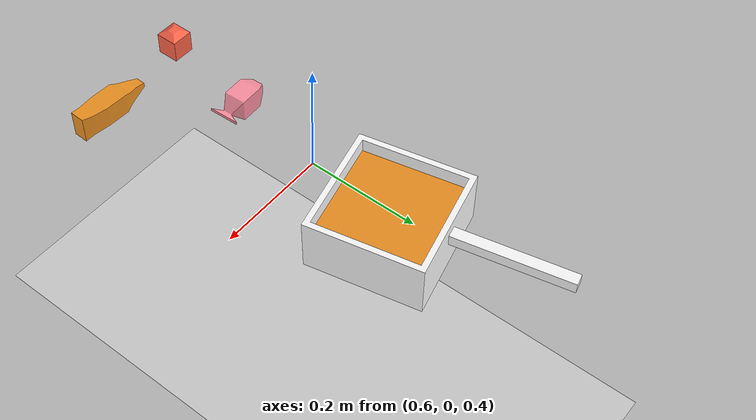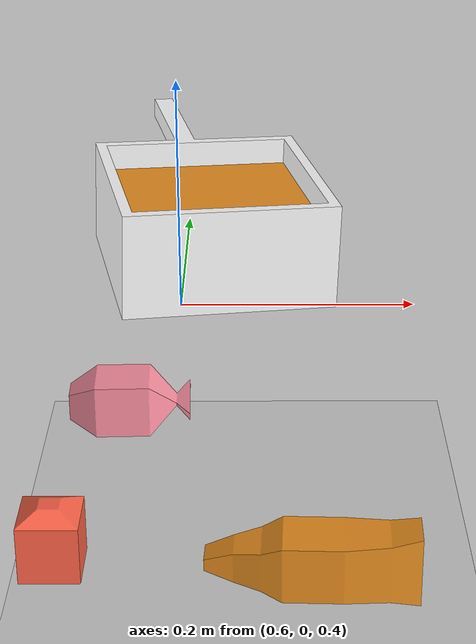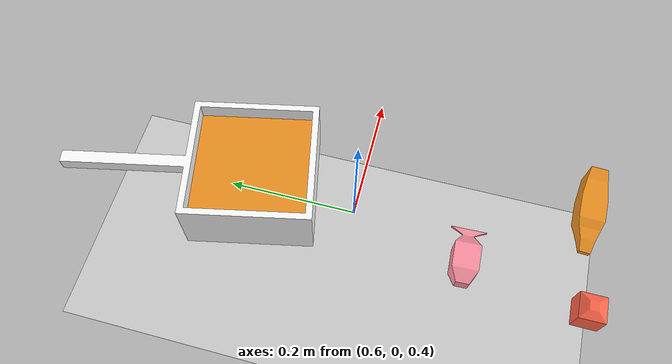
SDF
<sdf version="1.7">
 <world name="default">
  <model name="ground_plane">
   <static>1</static>
   <link name="link">
    <collision name="collision">
     <geometry><plane><normal>0 0 1</normal><size>100 100</size></plane></geometry>
     <surface>
      <contact><collide_bitmask>65535</collide_bitmask></contact>
      <friction><ode><mu>100</mu><mu2>50</mu2></ode></friction>
     </surface>
    </collision>
    <visual name="visual">
     <cast_shadows>0</cast_shadows>
     <geometry><plane><normal>0 0 1</normal><size>100 100</size></plane></geometry>
     <material>
      <script><uri>file://media/materials/scripts/gazebo.material</uri><name>Gazebo/Grey</name></script>
     </material>
    </visual>
   </link>
  </model>
  <light name="sun" type="directional">
   <pose>0 0 10 0 -0 0</pose>
   <diffuse>0.8 0.8 0.8 1</diffuse>
   <specular>0.2 0.2 0.2 1</specular>
   <attenuation>
    <range>1000</range>
    <constant>0.9</constant>
    <linear>0.01</linear>
    <quadratic>0.001</quadratic>
   </attenuation>
   <direction>-0.5 0.1 -0.9</direction>
   <spot><inner_angle>0</inner_angle><outer_angle>0</outer_angle><falloff>0</falloff></spot>
  </light>
  <gravity>0 0 -9.8</gravity>
  <magnetic_field>6e-06 2.3e-05 -4.2e-05</magnetic_field>
  <atmosphere type="adiabatic"/>
  <physics type="ode">
   <max_step_size>0.001</max_step_size>
   <real_time_factor>1</real_time_factor>
   <real_time_update_rate>1000</real_time_update_rate>
  </physics>
  <scene><ambient>0.4 0.4 0.4 1</ambient><background>0.7 0.7 0.7 1</background><shadows>1</shadows></scene>
  <spherical_coordinates>
   <surface_model>EARTH_WGS84</surface_model>
   <latitude_deg>0</latitude_deg>
   <longitude_deg>0</longitude_deg>
   <elevation>0</elevation>
   <heading_deg>0</heading_deg>
  </spherical_coordinates>
  <model name="fish">
   <static>0</static>
   <link name="link">
    <inertial>
     <mass>0.25</mass>
     <inertia><ixx>0.001</ixx><ixy>0</ixy><ixz>0</ixz><iyy>0.001</iyy><iyz>0</iyz><izz>0.001</izz></inertia>
    </inertial>
    <collision name="collision">
     <geometry><box><size>0.06 0.06 0.06</size></box></geometry>
     <surface>
      <friction><ode><mu>30</mu><mu2>30</mu2></ode></friction>
      <contact><ode><kp>1e+06</kp><kd>100</kd><max_vel>1</max_vel><min_depth>0.002</min_depth></ode></contact>
     </surface>
    </collision>
    <visual name="visual">
     <geometry><mesh><uri>model://fish/meshes/model.stl</uri></mesh></geometry>
     <material>
      <ambient>1 1 1 1</ambient>
      <diffuse>1 0.57 0.64 1</diffuse>
      <specular>0.1 0.1 0.1 1</specular>
      <emissive>0 0 0 1</emissive>
     </material>
    </visual>
    <velocity_decay><linear>0</linear><angular>0</angular></velocity_decay>
   </link>
   <pose>0.564873 -0.180136 0.384594 0 -0 0.034752</pose>
  </model>
  <model name="tomato">
   <static>0</static>
   <link name="link">
    <inertial>
     <mass>0.25</mass>
     <inertia><ixx>0.001</ixx><ixy>0</ixy><ixz>0</ixz><iyy>0.001</iyy><iyz>0</iyz><izz>0.001</izz></inertia>
    </inertial>
    <collision name="collision">
     <geometry><box><size>0.06 0.06 0.06</size></box></geometry>
     <surface>
      <friction><ode><mu>30</mu><mu2>30</mu2></ode></friction>
      <contact><ode><kp>1e+06</kp><kd>100</kd><max_vel>1</max_vel><min_depth>0.002</min_depth></ode></contact>
     </surface>
    </collision>
    <visual name="visual">
     <geometry><mesh><uri>model://tomato/meshes/model.stl</uri></mesh></geometry>
     <material>
      <ambient>1 1 1 1</ambient>
      <diffuse>1 0.39 0.28 1</diffuse>
      <specular>0.1 0.1 0.1 1</specular>
      <emissive>0 0 0 1</emissive>
     </material>
    </visual>
    <velocity_decay><linear>0</linear><angular>0</angular></velocity_decay>
   </link>
   <pose>0.533056 -0.367416 0.384594 0 -0 0.000264</pose>
  </model>
  <model name="carrot">
   <static>0</static>
   <link name="link">
    <inertial>
     <mass>0.25</mass>
     <inertia><ixx>0.001</ixx><ixy>0</ixy><ixz>0</ixz><iyy>0.001</iyy><iyz>0</iyz><izz>0.001</izz></inertia>
    </inertial>
    <collision name="collision">
     <geometry><box><size>0.06 0.06 0.06</size></box></geometry>
     <surface>
      <friction><ode><mu>30</mu><mu2>30</mu2></ode></friction>
      <contact><ode><kp>1e+06</kp><kd>100</kd><max_vel>1</max_vel><min_depth>0.002</min_depth></ode></contact>
     </surface>
    </collision>
    <visual name="visual">
     <geometry><mesh><uri>model://carrot/meshes/model.stl</uri></mesh></geometry>
     <material>
      <ambient>1 1 1 1</ambient>
      <diffuse>0.93 0.57 0.13 1</diffuse>
      <specular>0.1 0.1 0.1 1</specular>
      <emissive>0 0 0 1</emissive>
     </material>
    </visual>
    <velocity_decay><linear>0</linear><angular>0</angular></velocity_decay>
   </link>
   <pose>0.701114 -0.381092 0.384594 -1.5708 -0 -0.03757</pose>
  </model>
  <model name="pot">
   <static>1</static>
   <link name="link">
    <collision name="collision">
     <geometry><mesh><uri>model://pot/meshes/model.stl</uri></mesh></geometry>
    </collision>
    <visual name="pot">
     <geometry><mesh><uri>model://pot/meshes/model.stl</uri></mesh></geometry>
     <material>
      <ambient>1 1 1 1</ambient>
      <diffuse>1 1 1 1</diffuse>
      <specular>0.1 0.1 0.1 1</specular>
      <emissive>0 0 0 1</emissive>
     </material>
    </visual>
    <visual name="soup">
     <geometry><mesh><uri>model://pot/meshes/soup.stl</uri></mesh></geometry>
     <material>
      <ambient>1 1 1 1</ambient>
      <diffuse>0.93 0.57 0.13 1</diffuse>
      <specular>0.1 0.1 0.1 1</specular>
      <emissive>0 0 0 1</emissive>
     </material>
    </visual>
   </link>
   <pose>0.620404 0.170783 0.358427 -0.03454 0.007384 -1.36027</pose>
  </model>
 </world>
</sdf>
